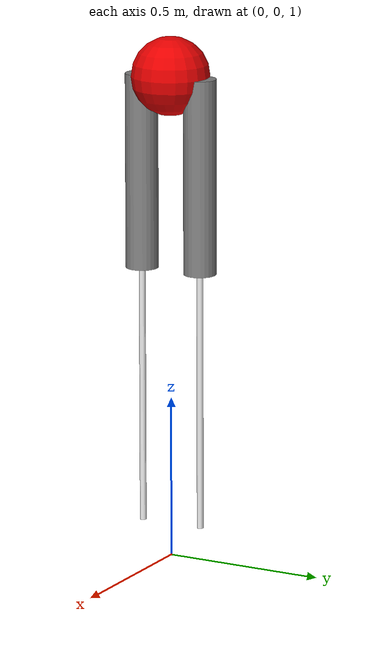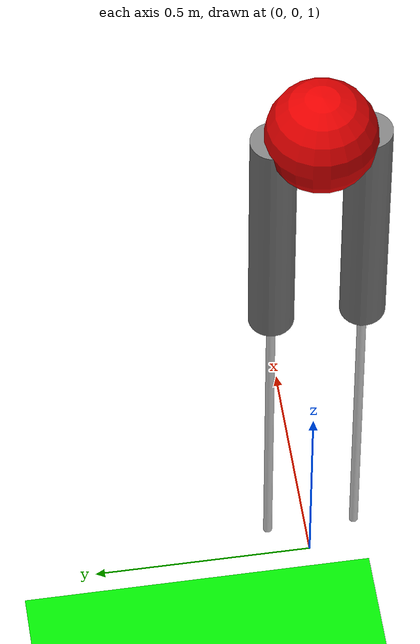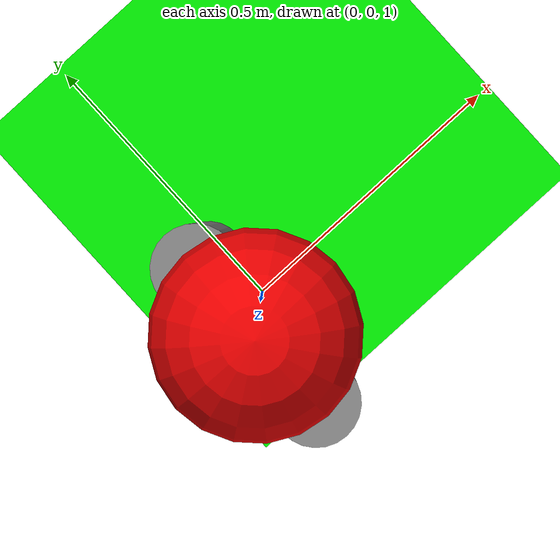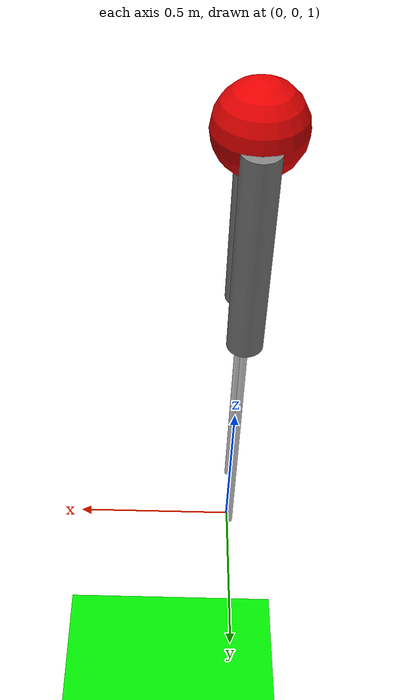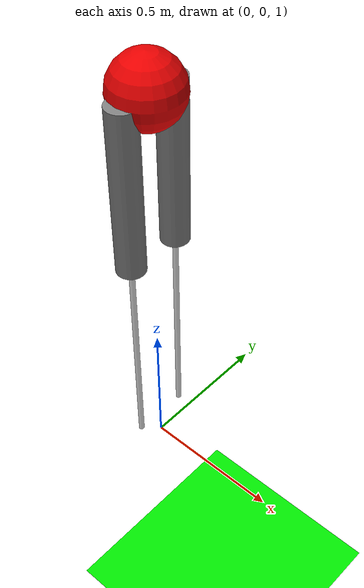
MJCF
<mujoco model="SLIP">
    <compiler coordinate="local" />
    <option timestep="0.001" integrator="RK4" gravity="0 0 -9.81">
		<flag sensornoise="disable" contact="enable" energy="enable"/>
	</option>

    <worldbody>
        <geom type="plane" size="25 2 0.01" rgba="0 0.9 0 1"/>
        <body name="SLIP" pos="0 0 2.5">
            <joint name="x" type="slide" pos="0 0 0" axis="1 0 0" />
            <joint name="z" type="slide" pos="0 0 0" axis="0 0 1" />
            <geom type="sphere" size="0.12" mass="1" rgba="0.9 0 0 1"/>
            <body name="thigh" pos="0 0.1 -0.3">
                <joint name="hip_joint" type="hinge" pos="0 0 0.3" axis="0 -1 0" damping="0.1"/>
                <geom type="cylinder" size="0.05 0.3" rgba="0.5 0.5 0.5 1" mass="1"/>
                <body name="shin_calf" pos="0 0 -0.6">
                    <joint name="knee_joint" type="slide" pos="0 0 0.5" axis="0 0 1" stiffness="1000"/>
                    <geom type="cylinder" size="0.01 0.5" rgba="0.9 0.9 0.9 1" mass="0.3"/>
                </body>
            </body>

            <body name="thigh2" pos="0 -0.1 -0.3">
                <joint name="hip_joint2" type="hinge" pos="0 0 0.3" axis="0 -1 0" damping="0.1"/>
                <geom type="cylinder" size="0.05 0.3" rgba="0.5 0.5 0.5 1" mass="0.1"/>
                <body name="shin_calf2" pos="0 0 -0.6">
                    <joint name="knee_joint2" type="slide" pos="0 0 0.5" axis="0 0 1" stiffness="1000"/>
                    <geom type="cylinder" size="0.01 0.5" rgba="0.9 0.9 0.9 1" mass="0.1"/>
                </body>
            </body>
        </body>
    </worldbody>

    <actuator>
        <motor ctrllimited="true" ctrlrange="-1. 1." gear="20." joint="hip_joint" />
        <motor ctrllimited="true" ctrlrange="-1. 1." gear="6." joint="hip_joint2" />
    </actuator>

</mujoco>
